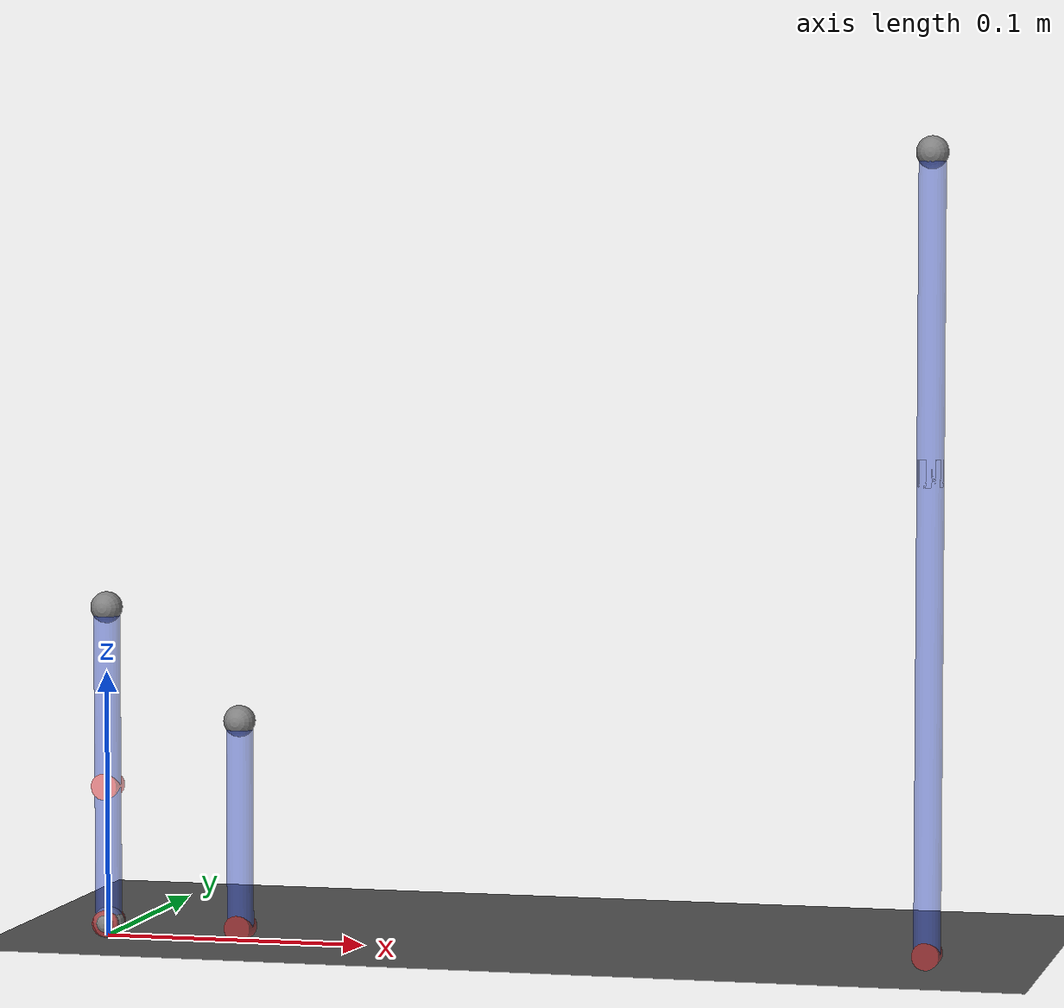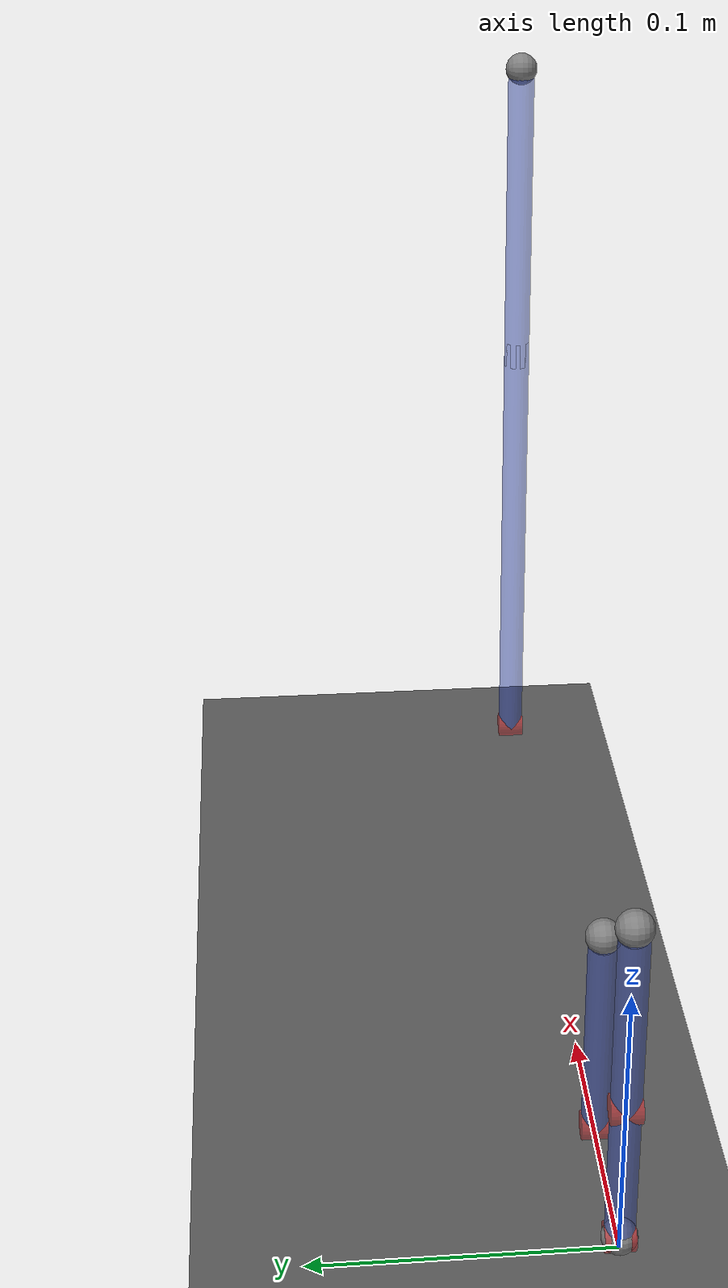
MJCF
<?xml version="1.0" encoding="utf-8"?>

<mujoco>

	<option timestep="1e-4"/>
	<option gravity="0 0 -9.8"/>

	<asset>
		<texture type="skybox" builtin="gradient" rgb1="1 1 1" rgb2="0.5 0.5 0.5" width="265" height="256"/>
		<texture name="grid" type="2d" builtin="checker" rgb1="0.1 0.1 0.1" rgb2="0.6 0.6 0.6" width="300" height="300"/>
		<material name="grid" texture="grid" texrepeat="10 10" reflectance="0.2"/>
	</asset>

	<worldbody>
		<light pos="0 0 10"/>
		<geom type="plane" size="0.5 0.5 0.1" material="grid"/>

		<camera name="side view" pos="0.1 -1.5 1.0" euler="90 0 0" fovy="60"/>
		<camera name="upper view" pos="0 0 1.5" euler="0 0 0"/>

		<body name="OAB" pos="0 0 0.005" euler="90 0 0">

			<joint name="O" type="hinge" axis="0 0 1" stiffness="0" springref="0" damping="0"/>
			<geom name="point O" type="cylinder" pos="0 0 0" size="0.005 0.005" rgba="0.89 0.14 0.16 0.5" euler="0 0 0" contype="0"/>
			<geom name="link OA" type="cylinder" pos="0 0.026 0" size="0.005 0.026" rgba="0.21 0.32 0.82 0.5" euler="90 0 0" contype="0"/>
			<site name="sA" size="0.006" pos="0 0 0"/>

			<body name="AB" pos="0 0.052 0" euler="0 0 0">
				<joint name="A" type="hinge" axis="0 0 1" stiffness="0" springref="0" damping="0"/>
				<geom name="point A" type="cylinder" pos="0 0 0" size="0.005 0.005" rgba="0.89 0.14 0.16 0.5" euler="0 0 0" contype="0"/>
				<geom name="link AB" type="cylinder" pos="0 0.0338 0" size="0.005 0.0338" rgba="0.21 0.32 0.82 0.5" euler="90 0 0" contype="0"/>
				<site name="sB1" size="0.006" pos="0 0.0676 0"/>
			</body>
		</body>

		<body name="CB" pos="0.052 0 0.005" euler="90 0 0">
			<joint name="C" type="hinge" axis="0 0 1" stiffness="0" springref="0" damping="0"/>
			<geom name="point C" type="cylinder" pos="0 0 0" size="0.005 0.005" rgba="0.89 0.14 0.16 0.5" euler="0 0 0" contype="0"/>
			<geom name="link CB" type="cylinder" pos="0 0.039 0" size="0.005 0.039" rgba="0.21 0.32 0.82 0.5" euler="90 0 0" contype="0"/>
			<site name="sB2" size="0.006" pos="0 0.078 0"/>
		</body>

		<body name="DSB" pos="0.312 0 0.005" euler="90 0 0">
			<joint name="D" type="hinge" axis="0 0 1" stiffness="0" springref="0" damping="0"/>
			<geom name="point D" type="cylinder" pos="0 0 0" size="0.005 0.005" rgba="0.89 0.14 0.16 0.5" euler="0 0 0" contype="0"/>
			<geom name="link DS" type="cylinder" pos="0 0.09 0" size="0.005 0.09" rgba="0.21 0.32 0.82 0.5" euler="90 0 0" contype="0"/>

			<body name="SB" pos="0 0.17 0" euler="0 0 0">
				<joint name="S" type="slide" axis="0 1 0" range="-0.12 0.12"/>
				<geom name="link SB" type="cylinder" pos="0 0.06 0" size="0.005 0.06" rgba="0.21 0.32 0.82 0.5" euler="90 0 0" contype="0"/>
				<site name="sB3" size="0.006" pos="0 0.12 0"/>
			</body>
		</body>
	</worldbody>

	<equality>
		<connect site1="sB1" site2="sB2"/>
		<connect site1="sB1" site2="sB3"/>
	</equality>

	<actuator>
		<position name="O" joint="O"/>
	</actuator>
	<sensor>
		<framepos objtype="site" objname="sA"/>
	</sensor>
</mujoco>
